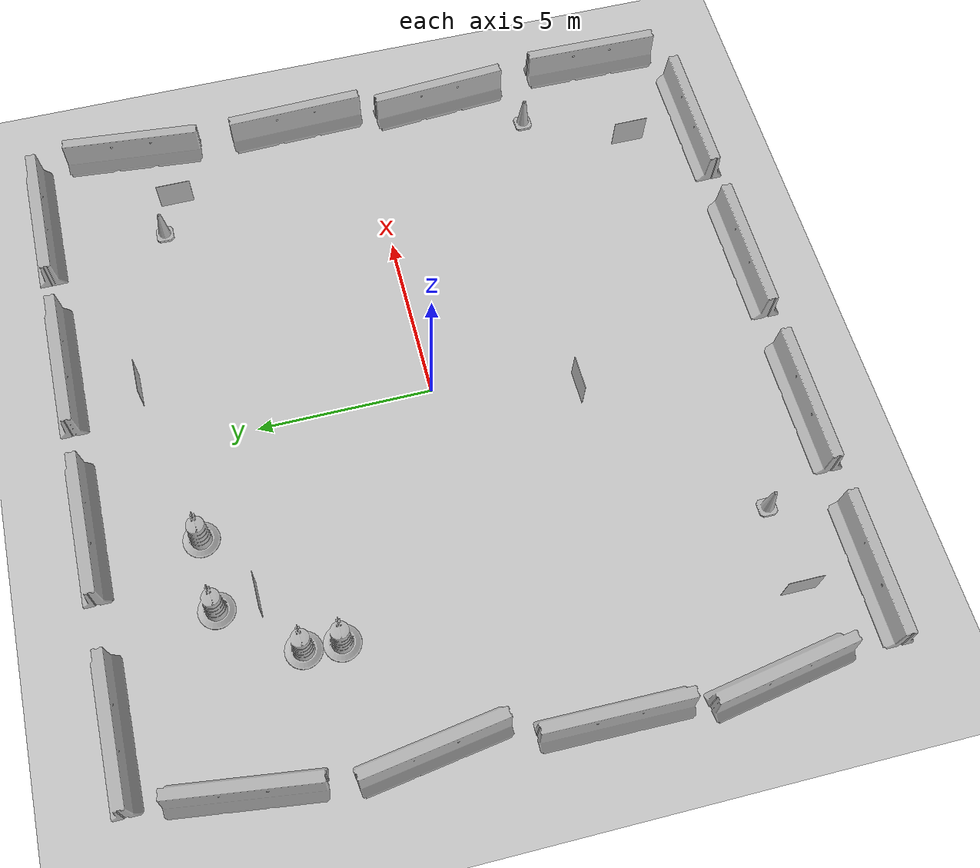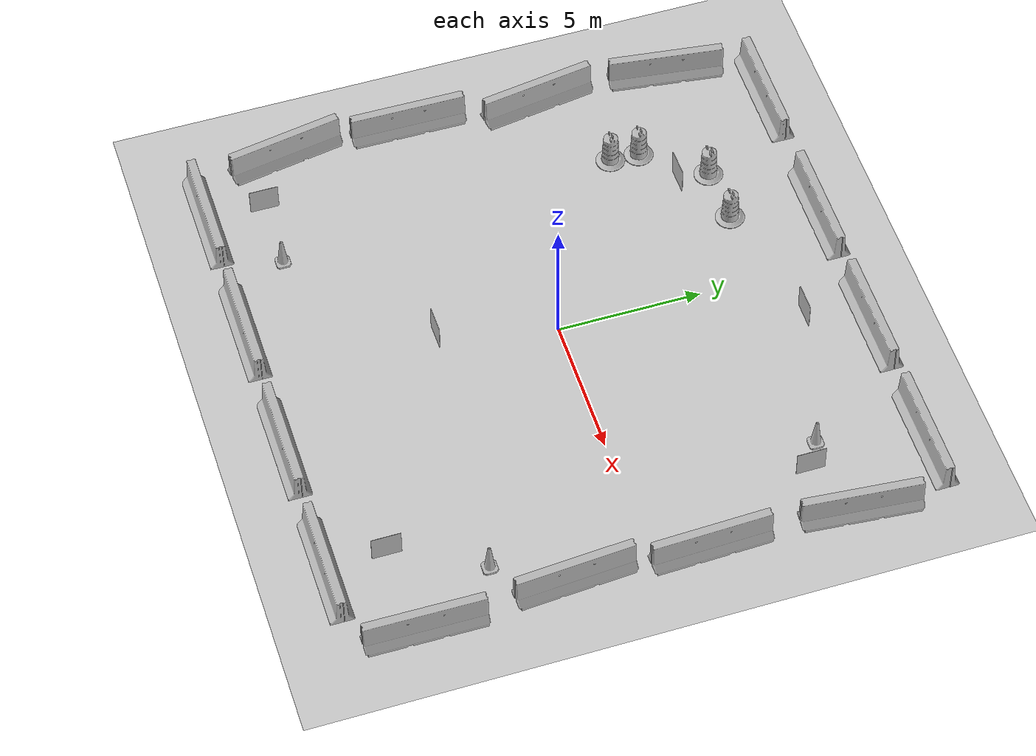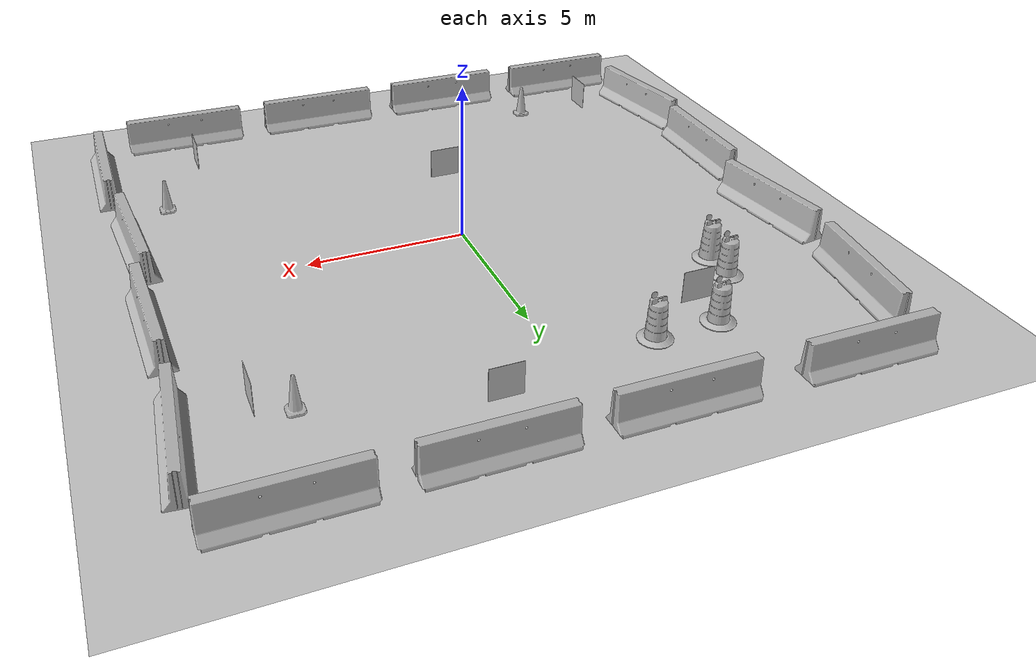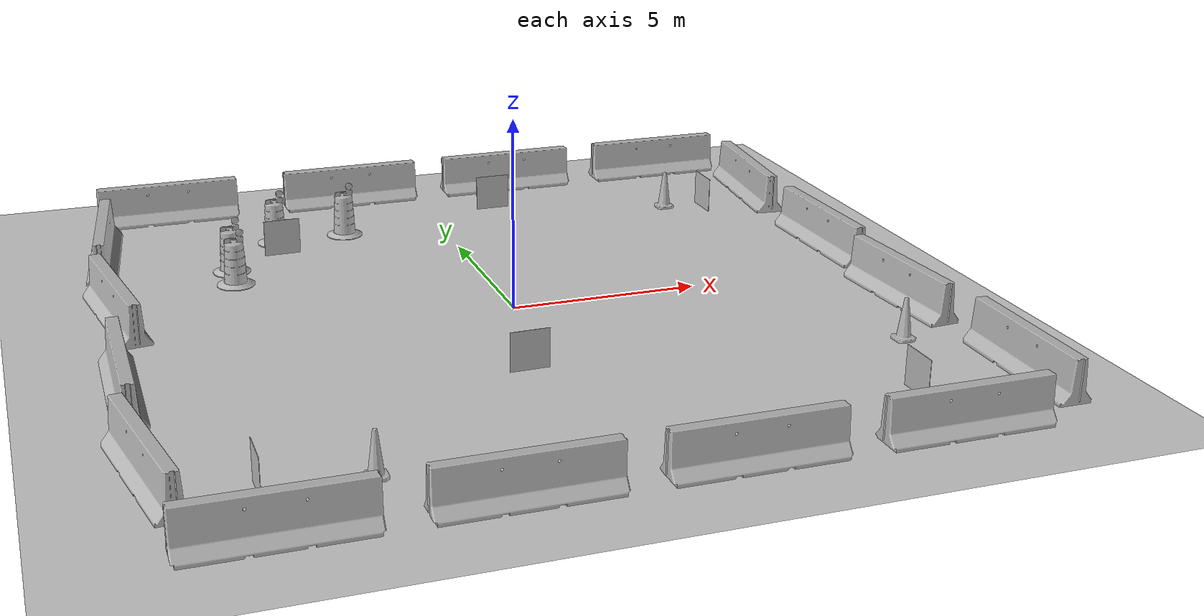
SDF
<sdf version="1.6">
 <world name="default">
  <light name="sun" type="directional">
   <pose>0 0 10 0 -0 0</pose>
   <diffuse>0.8 0.8 0.8 1</diffuse>
   <specular>0.2 0.2 0.2 1</specular>
   <attenuation>
    <range>1000</range>
    <constant>0.9</constant>
    <linear>0.01</linear>
    <quadratic>0.001</quadratic>
   </attenuation>
   <direction>-0.5 0.1 -0.9</direction>
  </light>
  <model name="ground_plane">
   <static>1</static>
   <link name="link">
    <collision name="collision">
     <geometry><plane><normal>0 0 1</normal><size>100 100</size></plane></geometry>
     <surface><friction><ode><mu>100</mu><mu2>50</mu2></ode></friction></surface>
    </collision>
    <visual name="visual">
     <cast_shadows>0</cast_shadows>
     <geometry><plane><normal>0 0 1</normal><size>100 100</size></plane></geometry>
     <material>
      <script><uri>file://media/materials/scripts/gazebo.material</uri><name>Gazebo/Grey</name></script>
     </material>
    </visual>
    <velocity_decay><linear>0</linear><angular>0</angular></velocity_decay>
   </link>
  </model>
  <physics name="default_physics" default="0" type="ode">
   <max_step_size>0.01</max_step_size>
   <real_time_factor>1</real_time_factor>
   <real_time_update_rate>100</real_time_update_rate>
  </physics>
  <scene><ambient>0.4 0.4 0.4 1</ambient><background>0.7 0.7 0.7 1</background><shadows>1</shadows></scene>
  <model name="jersey_barrier">
   <static>1</static>
   <link name="link">
    <visual name="visual">
     <geometry><mesh><uri>model://jersey_barrier/meshes/jersey_barrier.dae</uri></mesh></geometry>
    </visual>
    <collision name="upright">
     <pose>0 0 0.5715 0 -0 0</pose>
     <geometry><box><size>4.06542 0.3063 1.143</size></box></geometry>
    </collision>
    <collision name="base">
     <pose>0 0 0.032258 0 -0 0</pose>
     <geometry><box><size>4.06542 0.8107 0.064516</size></box></geometry>
    </collision>
    <collision name="base2">
     <pose>0 0 0.1 0 -0 0</pose>
     <geometry><box><size>4.06542 0.65 0.1</size></box></geometry>
    </collision>
    <collision name="base3">
     <pose>0 0 0.2 0 -0 0</pose>
     <geometry><box><size>4.06542 0.5 0.1</size></box></geometry>
    </collision>
    <collision name="left-angle">
     <pose>0 -0.224 0.2401 0.9 -0 0</pose>
     <geometry><box><size>4.06542 0.5 0.064516</size></box></geometry>
    </collision>
    <collision name="right-angle">
     <pose>0 0.224 0.2401 -0.9 0 0</pose>
     <geometry><box><size>4.06542 0.5 0.064516</size></box></geometry>
    </collision>
    <velocity_decay><linear>0</linear><angular>0</angular></velocity_decay>
   </link>
   <pose>-8 -10 0 0 -0 0</pose>
  </model>
  <model name="jersey_barrier_0">
   <static>1</static>
   <link name="link">
    <visual name="visual">
     <geometry><mesh><uri>model://jersey_barrier/meshes/jersey_barrier.dae</uri></mesh></geometry>
    </visual>
    <collision name="upright">
     <pose>0 0 0.5715 0 -0 0</pose>
     <geometry><box><size>4.06542 0.3063 1.143</size></box></geometry>
    </collision>
    <collision name="base">
     <pose>0 0 0.032258 0 -0 0</pose>
     <geometry><box><size>4.06542 0.8107 0.064516</size></box></geometry>
    </collision>
    <collision name="base2">
     <pose>0 0 0.1 0 -0 0</pose>
     <geometry><box><size>4.06542 0.65 0.1</size></box></geometry>
    </collision>
    <collision name="base3">
     <pose>0 0 0.2 0 -0 0</pose>
     <geometry><box><size>4.06542 0.5 0.1</size></box></geometry>
    </collision>
    <collision name="left-angle">
     <pose>0 -0.224 0.2401 0.9 -0 0</pose>
     <geometry><box><size>4.06542 0.5 0.064516</size></box></geometry>
    </collision>
    <collision name="right-angle">
     <pose>0 0.224 0.2401 -0.9 0 0</pose>
     <geometry><box><size>4.06542 0.5 0.064516</size></box></geometry>
    </collision>
    <velocity_decay><linear>0</linear><angular>0</angular></velocity_decay>
   </link>
   <pose>-3 -10 0 0 -0 0</pose>
  </model>
  <model name="jersey_barrier_1">
   <static>1</static>
   <link name="link">
    <visual name="visual">
     <geometry><mesh><uri>model://jersey_barrier/meshes/jersey_barrier.dae</uri></mesh></geometry>
    </visual>
    <collision name="upright">
     <pose>0 0 0.5715 0 -0 0</pose>
     <geometry><box><size>4.06542 0.3063 1.143</size></box></geometry>
    </collision>
    <collision name="base">
     <pose>0 0 0.032258 0 -0 0</pose>
     <geometry><box><size>4.06542 0.8107 0.064516</size></box></geometry>
    </collision>
    <collision name="base2">
     <pose>0 0 0.1 0 -0 0</pose>
     <geometry><box><size>4.06542 0.65 0.1</size></box></geometry>
    </collision>
    <collision name="base3">
     <pose>0 0 0.2 0 -0 0</pose>
     <geometry><box><size>4.06542 0.5 0.1</size></box></geometry>
    </collision>
    <collision name="left-angle">
     <pose>0 -0.224 0.2401 0.9 -0 0</pose>
     <geometry><box><size>4.06542 0.5 0.064516</size></box></geometry>
    </collision>
    <collision name="right-angle">
     <pose>0 0.224 0.2401 -0.9 0 0</pose>
     <geometry><box><size>4.06542 0.5 0.064516</size></box></geometry>
    </collision>
    <velocity_decay><linear>0</linear><angular>0</angular></velocity_decay>
   </link>
   <pose>2 -10 0 0 -0 0</pose>
  </model>
  <model name="jersey_barrier_2">
   <static>1</static>
   <link name="link">
    <visual name="visual">
     <geometry><mesh><uri>model://jersey_barrier/meshes/jersey_barrier.dae</uri></mesh></geometry>
    </visual>
    <collision name="upright">
     <pose>0 0 0.5715 0 -0 0</pose>
     <geometry><box><size>4.06542 0.3063 1.143</size></box></geometry>
    </collision>
    <collision name="base">
     <pose>0 0 0.032258 0 -0 0</pose>
     <geometry><box><size>4.06542 0.8107 0.064516</size></box></geometry>
    </collision>
    <collision name="base2">
     <pose>0 0 0.1 0 -0 0</pose>
     <geometry><box><size>4.06542 0.65 0.1</size></box></geometry>
    </collision>
    <collision name="base3">
     <pose>0 0 0.2 0 -0 0</pose>
     <geometry><box><size>4.06542 0.5 0.1</size></box></geometry>
    </collision>
    <collision name="left-angle">
     <pose>0 -0.224 0.2401 0.9 -0 0</pose>
     <geometry><box><size>4.06542 0.5 0.064516</size></box></geometry>
    </collision>
    <collision name="right-angle">
     <pose>0 0.224 0.2401 -0.9 0 0</pose>
     <geometry><box><size>4.06542 0.5 0.064516</size></box></geometry>
    </collision>
    <velocity_decay><linear>0</linear><angular>0</angular></velocity_decay>
   </link>
   <pose>7 -10 0 0 -0 0</pose>
  </model>
  <model name="jersey_barrier_3">
   <static>1</static>
   <link name="link">
    <visual name="visual">
     <geometry><mesh><uri>model://jersey_barrier/meshes/jersey_barrier.dae</uri></mesh></geometry>
    </visual>
    <collision name="upright">
     <pose>0 0 0.5715 0 -0 0</pose>
     <geometry><box><size>4.06542 0.3063 1.143</size></box></geometry>
    </collision>
    <collision name="base">
     <pose>0 0 0.032258 0 -0 0</pose>
     <geometry><box><size>4.06542 0.8107 0.064516</size></box></geometry>
    </collision>
    <collision name="base2">
     <pose>0 0 0.1 0 -0 0</pose>
     <geometry><box><size>4.06542 0.65 0.1</size></box></geometry>
    </collision>
    <collision name="base3">
     <pose>0 0 0.2 0 -0 0</pose>
     <geometry><box><size>4.06542 0.5 0.1</size></box></geometry>
    </collision>
    <collision name="left-angle">
     <pose>0 -0.224 0.2401 0.9 -0 0</pose>
     <geometry><box><size>4.06542 0.5 0.064516</size></box></geometry>
    </collision>
    <collision name="right-angle">
     <pose>0 0.224 0.2401 -0.9 0 0</pose>
     <geometry><box><size>4.06542 0.5 0.064516</size></box></geometry>
    </collision>
    <velocity_decay><linear>0</linear><angular>0</angular></velocity_decay>
   </link>
   <pose>-7.50675 10 0 0 -0 0</pose>
  </model>
  <model name="jersey_barrier_4">
   <static>1</static>
   <link name="link">
    <visual name="visual">
     <geometry><mesh><uri>model://jersey_barrier/meshes/jersey_barrier.dae</uri></mesh></geometry>
    </visual>
    <collision name="upright">
     <pose>0 0 0.5715 0 -0 0</pose>
     <geometry><box><size>4.06542 0.3063 1.143</size></box></geometry>
    </collision>
    <collision name="base">
     <pose>0 0 0.032258 0 -0 0</pose>
     <geometry><box><size>4.06542 0.8107 0.064516</size></box></geometry>
    </collision>
    <collision name="base2">
     <pose>0 0 0.1 0 -0 0</pose>
     <geometry><box><size>4.06542 0.65 0.1</size></box></geometry>
    </collision>
    <collision name="base3">
     <pose>0 0 0.2 0 -0 0</pose>
     <geometry><box><size>4.06542 0.5 0.1</size></box></geometry>
    </collision>
    <collision name="left-angle">
     <pose>0 -0.224 0.2401 0.9 -0 0</pose>
     <geometry><box><size>4.06542 0.5 0.064516</size></box></geometry>
    </collision>
    <collision name="right-angle">
     <pose>0 0.224 0.2401 -0.9 0 0</pose>
     <geometry><box><size>4.06542 0.5 0.064516</size></box></geometry>
    </collision>
    <velocity_decay><linear>0</linear><angular>0</angular></velocity_decay>
   </link>
   <pose>-2 10 0 0 -0 0</pose>
  </model>
  <model name="jersey_barrier_5">
   <static>1</static>
   <link name="link">
    <visual name="visual">
     <geometry><mesh><uri>model://jersey_barrier/meshes/jersey_barrier.dae</uri></mesh></geometry>
    </visual>
    <collision name="upright">
     <pose>0 0 0.5715 0 -0 0</pose>
     <geometry><box><size>4.06542 0.3063 1.143</size></box></geometry>
    </collision>
    <collision name="base">
     <pose>0 0 0.032258 0 -0 0</pose>
     <geometry><box><size>4.06542 0.8107 0.064516</size></box></geometry>
    </collision>
    <collision name="base2">
     <pose>0 0 0.1 0 -0 0</pose>
     <geometry><box><size>4.06542 0.65 0.1</size></box></geometry>
    </collision>
    <collision name="base3">
     <pose>0 0 0.2 0 -0 0</pose>
     <geometry><box><size>4.06542 0.5 0.1</size></box></geometry>
    </collision>
    <collision name="left-angle">
     <pose>0 -0.224 0.2401 0.9 -0 0</pose>
     <geometry><box><size>4.06542 0.5 0.064516</size></box></geometry>
    </collision>
    <collision name="right-angle">
     <pose>0 0.224 0.2401 -0.9 0 0</pose>
     <geometry><box><size>4.06542 0.5 0.064516</size></box></geometry>
    </collision>
    <velocity_decay><linear>0</linear><angular>0</angular></velocity_decay>
   </link>
   <pose>3 10 0 0 -0 0</pose>
  </model>
  <model name="jersey_barrier_6">
   <static>1</static>
   <link name="link">
    <visual name="visual">
     <geometry><mesh><uri>model://jersey_barrier/meshes/jersey_barrier.dae</uri></mesh></geometry>
    </visual>
    <collision name="upright">
     <pose>0 0 0.5715 0 -0 0</pose>
     <geometry><box><size>4.06542 0.3063 1.143</size></box></geometry>
    </collision>
    <collision name="base">
     <pose>0 0 0.032258 0 -0 0</pose>
     <geometry><box><size>4.06542 0.8107 0.064516</size></box></geometry>
    </collision>
    <collision name="base2">
     <pose>0 0 0.1 0 -0 0</pose>
     <geometry><box><size>4.06542 0.65 0.1</size></box></geometry>
    </collision>
    <collision name="base3">
     <pose>0 0 0.2 0 -0 0</pose>
     <geometry><box><size>4.06542 0.5 0.1</size></box></geometry>
    </collision>
    <collision name="left-angle">
     <pose>0 -0.224 0.2401 0.9 -0 0</pose>
     <geometry><box><size>4.06542 0.5 0.064516</size></box></geometry>
    </collision>
    <collision name="right-angle">
     <pose>0 0.224 0.2401 -0.9 0 0</pose>
     <geometry><box><size>4.06542 0.5 0.064516</size></box></geometry>
    </collision>
    <velocity_decay><linear>0</linear><angular>0</angular></velocity_decay>
   </link>
   <pose>8 10 0 0 -0 0</pose>
  </model>
  <model name="jersey_barrier_7">
   <static>1</static>
   <link name="link">
    <visual name="visual">
     <geometry><mesh><uri>model://jersey_barrier/meshes/jersey_barrier.dae</uri></mesh></geometry>
    </visual>
    <collision name="upright">
     <pose>0 0 0.5715 0 -0 0</pose>
     <geometry><box><size>4.06542 0.3063 1.143</size></box></geometry>
    </collision>
    <collision name="base">
     <pose>0 0 0.032258 0 -0 0</pose>
     <geometry><box><size>4.06542 0.8107 0.064516</size></box></geometry>
    </collision>
    <collision name="base2">
     <pose>0 0 0.1 0 -0 0</pose>
     <geometry><box><size>4.06542 0.65 0.1</size></box></geometry>
    </collision>
    <collision name="base3">
     <pose>0 0 0.2 0 -0 0</pose>
     <geometry><box><size>4.06542 0.5 0.1</size></box></geometry>
    </collision>
    <collision name="left-angle">
     <pose>0 -0.224 0.2401 0.9 -0 0</pose>
     <geometry><box><size>4.06542 0.5 0.064516</size></box></geometry>
    </collision>
    <collision name="right-angle">
     <pose>0 0.224 0.2401 -0.9 0 0</pose>
     <geometry><box><size>4.06542 0.5 0.064516</size></box></geometry>
    </collision>
    <velocity_decay><linear>0</linear><angular>0</angular></velocity_decay>
   </link>
   <pose>9.74902 -2.57759 0 0 -0 1.64</pose>
  </model>
  <model name="jersey_barrier_8">
   <static>1</static>
   <link name="link">
    <visual name="visual">
     <geometry><mesh><uri>model://jersey_barrier/meshes/jersey_barrier.dae</uri></mesh></geometry>
    </visual>
    <collision name="upright">
     <pose>0 0 0.5715 0 -0 0</pose>
     <geometry><box><size>4.06542 0.3063 1.143</size></box></geometry>
    </collision>
    <collision name="base">
     <pose>0 0 0.032258 0 -0 0</pose>
     <geometry><box><size>4.06542 0.8107 0.064516</size></box></geometry>
    </collision>
    <collision name="base2">
     <pose>0 0 0.1 0 -0 0</pose>
     <geometry><box><size>4.06542 0.65 0.1</size></box></geometry>
    </collision>
    <collision name="base3">
     <pose>0 0 0.2 0 -0 0</pose>
     <geometry><box><size>4.06542 0.5 0.1</size></box></geometry>
    </collision>
    <collision name="left-angle">
     <pose>0 -0.224 0.2401 0.9 -0 0</pose>
     <geometry><box><size>4.06542 0.5 0.064516</size></box></geometry>
    </collision>
    <collision name="right-angle">
     <pose>0 0.224 0.2401 -0.9 0 0</pose>
     <geometry><box><size>4.06542 0.5 0.064516</size></box></geometry>
    </collision>
    <velocity_decay><linear>0</linear><angular>0</angular></velocity_decay>
   </link>
   <pose>9.88657 1.94086 0 0 -0 1.6</pose>
  </model>
  <model name="jersey_barrier_9">
   <static>1</static>
   <link name="link">
    <visual name="visual">
     <geometry><mesh><uri>model://jersey_barrier/meshes/jersey_barrier.dae</uri></mesh></geometry>
    </visual>
    <collision name="upright">
     <pose>0 0 0.5715 0 -0 0</pose>
     <geometry><box><size>4.06542 0.3063 1.143</size></box></geometry>
    </collision>
    <collision name="base">
     <pose>0 0 0.032258 0 -0 0</pose>
     <geometry><box><size>4.06542 0.8107 0.064516</size></box></geometry>
    </collision>
    <collision name="base2">
     <pose>0 0 0.1 0 -0 0</pose>
     <geometry><box><size>4.06542 0.65 0.1</size></box></geometry>
    </collision>
    <collision name="base3">
     <pose>0 0 0.2 0 -0 0</pose>
     <geometry><box><size>4.06542 0.5 0.1</size></box></geometry>
    </collision>
    <collision name="left-angle">
     <pose>0 -0.224 0.2401 0.9 -0 0</pose>
     <geometry><box><size>4.06542 0.5 0.064516</size></box></geometry>
    </collision>
    <collision name="right-angle">
     <pose>0 0.224 0.2401 -0.9 0 0</pose>
     <geometry><box><size>4.06542 0.5 0.064516</size></box></geometry>
    </collision>
    <velocity_decay><linear>0</linear><angular>0</angular></velocity_decay>
   </link>
   <pose>-10.0607 -6.69856 0 0 0 -1.4</pose>
  </model>
  <model name="jersey_barrier_10">
   <static>1</static>
   <link name="link">
    <visual name="visual">
     <geometry><mesh><uri>model://jersey_barrier/meshes/jersey_barrier.dae</uri></mesh></geometry>
    </visual>
    <collision name="upright">
     <pose>0 0 0.5715 0 -0 0</pose>
     <geometry><box><size>4.06542 0.3063 1.143</size></box></geometry>
    </collision>
    <collision name="base">
     <pose>0 0 0.032258 0 -0 0</pose>
     <geometry><box><size>4.06542 0.8107 0.064516</size></box></geometry>
    </collision>
    <collision name="base2">
     <pose>0 0 0.1 0 -0 0</pose>
     <geometry><box><size>4.06542 0.65 0.1</size></box></geometry>
    </collision>
    <collision name="base3">
     <pose>0 0 0.2 0 -0 0</pose>
     <geometry><box><size>4.06542 0.5 0.1</size></box></geometry>
    </collision>
    <collision name="left-angle">
     <pose>0 -0.224 0.2401 0.9 -0 0</pose>
     <geometry><box><size>4.06542 0.5 0.064516</size></box></geometry>
    </collision>
    <collision name="right-angle">
     <pose>0 0.224 0.2401 -0.9 0 0</pose>
     <geometry><box><size>4.06542 0.5 0.064516</size></box></geometry>
    </collision>
    <velocity_decay><linear>0</linear><angular>0</angular></velocity_decay>
   </link>
   <pose>-10.0774 -2.27159 0 0 -0 1.56</pose>
  </model>
  <model name="jersey_barrier_11">
   <static>1</static>
   <link name="link">
    <visual name="visual">
     <geometry><mesh><uri>model://jersey_barrier/meshes/jersey_barrier.dae</uri></mesh></geometry>
    </visual>
    <collision name="upright">
     <pose>0 0 0.5715 0 -0 0</pose>
     <geometry><box><size>4.06542 0.3063 1.143</size></box></geometry>
    </collision>
    <collision name="base">
     <pose>0 0 0.032258 0 -0 0</pose>
     <geometry><box><size>4.06542 0.8107 0.064516</size></box></geometry>
    </collision>
    <collision name="base2">
     <pose>0 0 0.1 0 -0 0</pose>
     <geometry><box><size>4.06542 0.65 0.1</size></box></geometry>
    </collision>
    <collision name="base3">
     <pose>0 0 0.2 0 -0 0</pose>
     <geometry><box><size>4.06542 0.5 0.1</size></box></geometry>
    </collision>
    <collision name="left-angle">
     <pose>0 -0.224 0.2401 0.9 -0 0</pose>
     <geometry><box><size>4.06542 0.5 0.064516</size></box></geometry>
    </collision>
    <collision name="right-angle">
     <pose>0 0.224 0.2401 -0.9 0 0</pose>
     <geometry><box><size>4.06542 0.5 0.064516</size></box></geometry>
    </collision>
    <velocity_decay><linear>0</linear><angular>0</angular></velocity_decay>
   </link>
   <pose>-9.77013 2.34791 0 0 -0 1.72</pose>
  </model>
  <model name="jersey_barrier_12">
   <static>1</static>
   <link name="link">
    <visual name="visual">
     <geometry><mesh><uri>model://jersey_barrier/meshes/jersey_barrier.dae</uri></mesh></geometry>
    </visual>
    <collision name="upright">
     <pose>0 0 0.5715 0 -0 0</pose>
     <geometry><box><size>4.06542 0.3063 1.143</size></box></geometry>
    </collision>
    <collision name="base">
     <pose>0 0 0.032258 0 -0 0</pose>
     <geometry><box><size>4.06542 0.8107 0.064516</size></box></geometry>
    </collision>
    <collision name="base2">
     <pose>0 0 0.1 0 -0 0</pose>
     <geometry><box><size>4.06542 0.65 0.1</size></box></geometry>
    </collision>
    <collision name="base3">
     <pose>0 0 0.2 0 -0 0</pose>
     <geometry><box><size>4.06542 0.5 0.1</size></box></geometry>
    </collision>
    <collision name="left-angle">
     <pose>0 -0.224 0.2401 0.9 -0 0</pose>
     <geometry><box><size>4.06542 0.5 0.064516</size></box></geometry>
    </collision>
    <collision name="right-angle">
     <pose>0 0.224 0.2401 -0.9 0 0</pose>
     <geometry><box><size>4.06542 0.5 0.064516</size></box></geometry>
    </collision>
    <velocity_decay><linear>0</linear><angular>0</angular></velocity_decay>
   </link>
   <pose>10.0879 -7.62159 0 0 -0 1.56</pose>
  </model>
  <model name="jersey_barrier_13">
   <static>1</static>
   <link name="link">
    <visual name="visual">
     <geometry><mesh><uri>model://jersey_barrier/meshes/jersey_barrier.dae</uri></mesh></geometry>
    </visual>
    <collision name="upright">
     <pose>0 0 0.5715 0 -0 0</pose>
     <geometry><box><size>4.06542 0.3063 1.143</size></box></geometry>
    </collision>
    <collision name="base">
     <pose>0 0 0.032258 0 -0 0</pose>
     <geometry><box><size>4.06542 0.8107 0.064516</size></box></geometry>
    </collision>
    <collision name="base2">
     <pose>0 0 0.1 0 -0 0</pose>
     <geometry><box><size>4.06542 0.65 0.1</size></box></geometry>
    </collision>
    <collision name="base3">
     <pose>0 0 0.2 0 -0 0</pose>
     <geometry><box><size>4.06542 0.5 0.1</size></box></geometry>
    </collision>
    <collision name="left-angle">
     <pose>0 -0.224 0.2401 0.9 -0 0</pose>
     <geometry><box><size>4.06542 0.5 0.064516</size></box></geometry>
    </collision>
    <collision name="right-angle">
     <pose>0 0.224 0.2401 -0.9 0 0</pose>
     <geometry><box><size>4.06542 0.5 0.064516</size></box></geometry>
    </collision>
    <velocity_decay><linear>0</linear><angular>0</angular></velocity_decay>
   </link>
   <pose>10 7 0 0 -0 1.48</pose>
  </model>
  <model name="jersey_barrier_14">
   <static>1</static>
   <link name="link">
    <visual name="visual">
     <geometry><mesh><uri>model://jersey_barrier/meshes/jersey_barrier.dae</uri></mesh></geometry>
    </visual>
    <collision name="upright">
     <pose>0 0 0.5715 0 -0 0</pose>
     <geometry><box><size>4.06542 0.3063 1.143</size></box></geometry>
    </collision>
    <collision name="base">
     <pose>0 0 0.032258 0 -0 0</pose>
     <geometry><box><size>4.06542 0.8107 0.064516</size></box></geometry>
    </collision>
    <collision name="base2">
     <pose>0 0 0.1 0 -0 0</pose>
     <geometry><box><size>4.06542 0.65 0.1</size></box></geometry>
    </collision>
    <collision name="base3">
     <pose>0 0 0.2 0 -0 0</pose>
     <geometry><box><size>4.06542 0.5 0.1</size></box></geometry>
    </collision>
    <collision name="left-angle">
     <pose>0 -0.224 0.2401 0.9 -0 0</pose>
     <geometry><box><size>4.06542 0.5 0.064516</size></box></geometry>
    </collision>
    <collision name="right-angle">
     <pose>0 0.224 0.2401 -0.9 0 0</pose>
     <geometry><box><size>4.06542 0.5 0.064516</size></box></geometry>
    </collision>
    <velocity_decay><linear>0</linear><angular>0</angular></velocity_decay>
   </link>
   <pose>-9.64482 7.05946 0 0 -0 1.44</pose>
  </model>
  <model name="Construction Cone">
   <link name="link">
    <collision name="collision">
     <geometry>
      <mesh><scale>10 10 10</scale><uri>model://construction_cone/meshes/construction_cone.dae</uri></mesh>
     </geometry>
    </collision>
    <visual name="visual">
     <geometry>
      <mesh><scale>10 10 10</scale><uri>model://construction_cone/meshes/construction_cone.dae</uri></mesh>
     </geometry>
    </visual>
    <velocity_decay><linear>0</linear><angular>0</angular></velocity_decay>
    <inertial>
     <inertia><ixx>1</ixx><ixy>0</ixy><ixz>0</ixz><iyy>1</iyy><iyz>0</iyz><izz>1</izz></inertia>
     <mass>1</mass>
    </inertial>
   </link>
   <pose>-5.59121 -8.00001 -0.00088 0 -0 1.1e-05</pose>
   <static>0</static>
  </model>
  <model name="Construction Cone_0">
   <link name="link">
    <collision name="collision">
     <geometry>
      <mesh><scale>10 10 10</scale><uri>model://construction_cone/meshes/construction_cone.dae</uri></mesh>
     </geometry>
    </collision>
    <visual name="visual">
     <geometry>
      <mesh><scale>10 10 10</scale><uri>model://construction_cone/meshes/construction_cone.dae</uri></mesh>
     </geometry>
    </visual>
    <velocity_decay><linear>0</linear><angular>0</angular></velocity_decay>
    <inertial>
     <inertia><ixx>1</ixx><ixy>0</ixy><ixz>0</ixz><iyy>1</iyy><iyz>0</iyz><izz>1</izz></inertia>
     <mass>1</mass>
    </inertial>
   </link>
   <pose>6.99685 6.55732 -0.00088 -0 -0 -0.007003</pose>
   <static>0</static>
  </model>
  <model name="Construction Barrel_1">
   <link name="link">
    <inertial>
     <pose>0 0 0.4 0 -0 0</pose>
     <mass>500</mass>
     <inertia><ixx>51.2096</ixx><iyy>51.2096</iyy><izz>25</izz><ixy>0</ixy><ixz>0</ixz><iyz>0</iyz></inertia>
    </inertial>
    <collision name="collision">
     <geometry><mesh><uri>model://construction_barrel/meshes/construction_barrel.dae</uri></mesh></geometry>
    </collision>
    <visual name="visual">
     <geometry><mesh><uri>model://construction_barrel/meshes/construction_barrel.dae</uri></mesh></geometry>
    </visual>
    <velocity_decay><linear>0</linear><angular>0</angular></velocity_decay>
   </link>
   <pose>-6.50294 3.98334 0 0 0 -0.012716</pose>
   <static>0</static>
  </model>
  <model name="Construction Barrel_2">
   <link name="link">
    <inertial>
     <pose>0 0 0.4 0 -0 0</pose>
     <mass>500</mass>
     <inertia><ixx>51.2096</ixx><iyy>51.2096</iyy><izz>25</izz><ixy>0</ixy><ixz>0</ixz><iyz>0</iyz></inertia>
    </inertial>
    <collision name="collision">
     <geometry><mesh><uri>model://construction_barrel/meshes/construction_barrel.dae</uri></mesh></geometry>
    </collision>
    <visual name="visual">
     <geometry><mesh><uri>model://construction_barrel/meshes/construction_barrel.dae</uri></mesh></geometry>
    </visual>
    <velocity_decay><linear>0</linear><angular>0</angular></velocity_decay>
   </link>
   <pose>-6.45201 4.99738 -8.8e-05 -8.3e-05 0.000333 0.060316</pose>
   <static>0</static>
  </model>
  <model name="Construction Barrel_5">
   <link name="link">
    <inertial>
     <pose>0 0 0.4 0 -0 0</pose>
     <mass>500</mass>
     <inertia><ixx>51.2096</ixx><iyy>51.2096</iyy><izz>25</izz><ixy>0</ixy><ixz>0</ixz><iyz>0</iyz></inertia>
    </inertial>
    <collision name="collision">
     <geometry><mesh><uri>model://construction_barrel/meshes/construction_barrel.dae</uri></mesh></geometry>
    </collision>
    <visual name="visual">
     <geometry><mesh><uri>model://construction_barrel/meshes/construction_barrel.dae</uri></mesh></geometry>
    </visual>
    <velocity_decay><linear>0</linear><angular>0</angular></velocity_decay>
   </link>
   <pose>-4.87557 7.00819 -9e-05 0.000304 -0.000176 0.146298</pose>
   <static>0</static>
  </model>
  <model name="Construction Barrel_7">
   <link name="link">
    <inertial>
     <pose>0 0 0.4 0 -0 0</pose>
     <mass>500</mass>
     <inertia><ixx>51.2096</ixx><iyy>51.2096</iyy><izz>25</izz><ixy>0</ixy><ixz>0</ixz><iyz>0</iyz></inertia>
    </inertial>
    <collision name="collision">
     <geometry><mesh><uri>model://construction_barrel/meshes/construction_barrel.dae</uri></mesh></geometry>
    </collision>
    <visual name="visual">
     <geometry><mesh><uri>model://construction_barrel/meshes/construction_barrel.dae</uri></mesh></geometry>
    </visual>
    <velocity_decay><linear>0</linear><angular>0</angular></velocity_decay>
   </link>
   <pose>-2.84336 7.07608 0 0 -0 0.070144</pose>
   <static>0</static>
  </model>
  <model name="Construction Cone_1">
   <link name="link">
    <collision name="collision">
     <geometry>
      <mesh><scale>10 10 10</scale><uri>model://construction_cone/meshes/construction_cone.dae</uri></mesh>
     </geometry>
    </collision>
    <visual name="visual">
     <geometry>
      <mesh><scale>10 10 10</scale><uri>model://construction_cone/meshes/construction_cone.dae</uri></mesh>
     </geometry>
    </visual>
    <velocity_decay><linear>0</linear><angular>0</angular></velocity_decay>
    <inertial>
     <inertia><ixx>1</ixx><ixy>0</ixy><ixz>0</ixz><iyy>1</iyy><iyz>0</iyz><izz>1</izz></inertia>
     <mass>1</mass>
    </inertial>
   </link>
   <pose>8.42887 -5.00001 -0.00088 0 -0 1.1e-05</pose>
   <static>0</static>
  </model>
  <gravity>0 0 -9.8</gravity>
  <magnetic_field>6e-06 2.3e-05 -4.2e-05</magnetic_field>
  <atmosphere type="adiabatic"/>
  <audio><device>default</device></audio>
  <spherical_coordinates>
   <surface_model>EARTH_WGS84</surface_model>
   <latitude_deg>0</latitude_deg>
   <longitude_deg>0</longitude_deg>
   <elevation>0</elevation>
   <heading_deg>0</heading_deg>
  </spherical_coordinates>
  <model name="Apriltag36_11_00001">
   <link name="main">
    <visual name="main_Visual">
     <geometry><box><size>1 1 0.01</size></box></geometry>
     <material>
      <script>
       <uri>model://Apriltag36_11_00001/materials/scripts</uri>
       <uri>model://Apriltag36_11_00001/materials/textures</uri>
       <name>Apriltag36_11_00001</name>
      </script>
     </material>
    </visual>
   </link>
   <static>1</static>
   <pose>-8.02369 -7.97729 0.556206 0.00211 1.56982 7e-06</pose>
  </model>
  <model name="Apriltag36_11_00002">
   <link name="main">
    <visual name="main_Visual">
     <geometry><box><size>1 1 0.01</size></box></geometry>
     <material>
      <script>
       <uri>model://Apriltag36_11_00002/materials/scripts</uri>
       <uri>model://Apriltag36_11_00002/materials/textures</uri>
       <name>Apriltag36_11_00002</name>
      </script>
     </material>
    </visual>
   </link>
   <static>1</static>
   <pose>-4.87908 5.87214 0.544102 1.57041 -0.000282 0.01545</pose>
  </model>
  <model name="Apriltag36_11_00003">
   <link name="main">
    <visual name="main_Visual">
     <geometry><box><size>1 1 0.01</size></box></geometry>
     <material>
      <script>
       <uri>model://Apriltag36_11_00003/materials/scripts</uri>
       <uri>model://Apriltag36_11_00003/materials/textures</uri>
       <name>Apriltag36_11_00003</name>
      </script>
     </material>
    </visual>
   </link>
   <static>1</static>
   <pose>6.9778 -7.97359 0.553102 3.14159 -1.56689 3.14159</pose>
  </model>
  <model name="Apriltag36_11_00004">
   <link name="main">
    <visual name="main_Visual">
     <geometry><box><size>1 1 0.01</size></box></geometry>
     <material>
      <script>
       <uri>model://Apriltag36_11_00004/materials/scripts</uri>
       <uri>model://Apriltag36_11_00004/materials/textures</uri>
       <name>Apriltag36_11_00004</name>
      </script>
     </material>
    </visual>
   </link>
   <static>1</static>
   <pose>-0.914231 -4.00221 0.571579 -1.58507 1.56812 1e-06</pose>
  </model>
  <model name="Apriltag36_11_00005">
   <link name="main">
    <visual name="main_Visual">
     <geometry><box><size>1 1 0.01</size></box></geometry>
     <material>
      <script>
       <uri>model://Apriltag36_11_00005/materials/scripts</uri>
       <uri>model://Apriltag36_11_00005/materials/textures</uri>
       <name>Apriltag36_11_00005</name>
      </script>
     </material>
    </visual>
   </link>
   <static>1</static>
   <pose>1.95641 7.99754 0.546166 1.56946 6e-06 0.003926</pose>
  </model>
  <model name="Apriltag36_11_00006">
   <link name="main">
    <visual name="main_Visual">
     <geometry><box><size>1 1 0.01</size></box></geometry>
     <material>
      <script>
       <uri>model://Apriltag36_11_00006/materials/scripts</uri>
       <uri>model://Apriltag36_11_00006/materials/textures</uri>
       <name>Apriltag36_11_00006</name>
      </script>
     </material>
    </visual>
   </link>
   <static>1</static>
   <pose>8.00751 6.00374 0.566401 0.002917 -1.56967 3.1e-05</pose>
  </model>
 </world>
</sdf>
